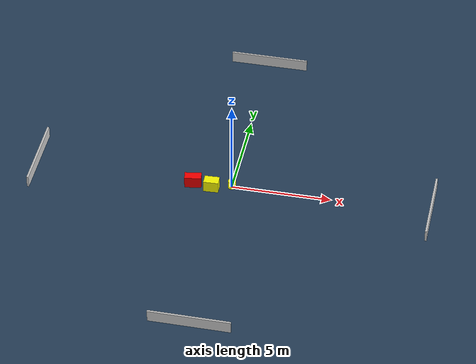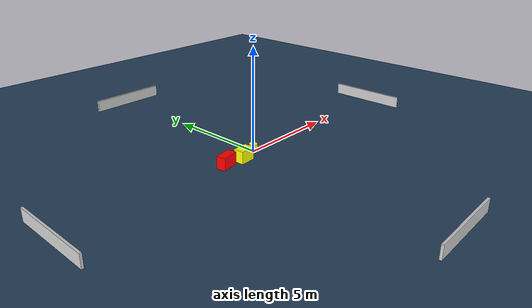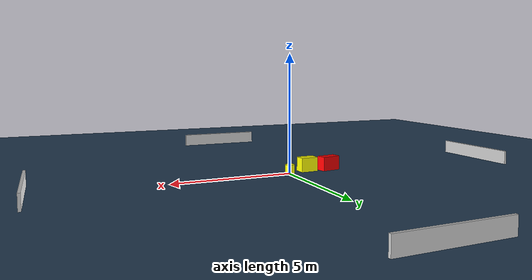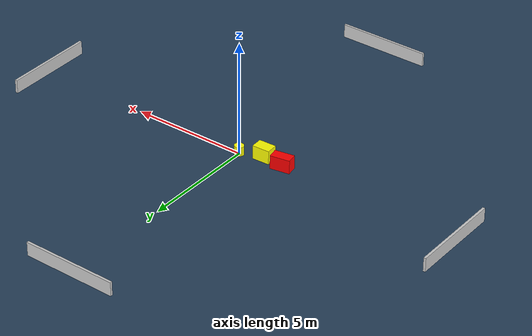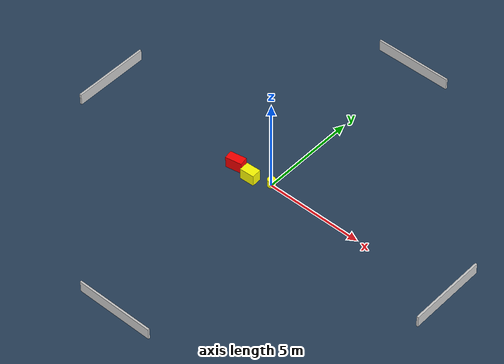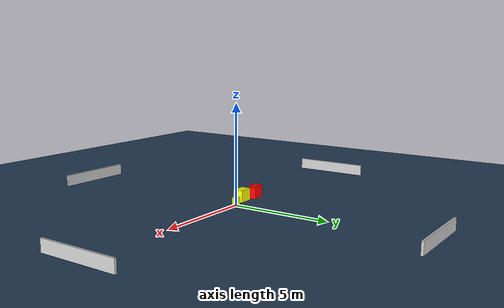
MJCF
<?xml version="1.0" ?>
<mujoco model="generated_environment">
  <option timestep="0.01" integrator="RK4" cone="elliptic"/>
  <default>
    <geom density="1"/>
  </default>
  <asset>
    <texture builtin="gradient" height="3072" name="skybox" rgb1="0.3 0.5 0.7" rgb2="0 0 0" type="skybox" width="512"/>
    <texture builtin="checker" height="300" name="groundplane" rgb1="0.2 0.3 0.4" rgb2="0.1 0.2 0.3" type="2d" width="300"/>
    <material name="groundplane" reflectance="0.2" texrepeat="5 5" texture="groundplane"/>
  </asset>
  <worldbody>
    <light dir="0 0 -1" directional="true" pos="0 0 1.5"/>
    <geom condim="3" friction="0.5 0.005 0.001" material="groundplane" name="floor" pos="0 0 0" size="0 0 0.05" type="plane"/>
    <body name="walls">
      <geom name="wall_1" condim="4" pos="-10.0 0.0 0.3" rgba="0.800000011920929 0.800000011920929 0.800000011920929 1.0" size="0.05 2.0 0.3" type="box"/>
      <geom name="wall_2" condim="4" pos="10.0 0.0 0.3" rgba="0.800000011920929 0.800000011920929 0.800000011920929 1.0" size="0.05 2.0 0.3" type="box"/>
      <geom name="wall_3" condim="4" pos="0.0 -10.0 0.3" rgba="0.800000011920929 0.800000011920929 0.800000011920929 1.0" size="2.0 0.05 0.3" type="box"/>
      <geom name="wall_4" condim="4" pos="0.0 10.0 0.3" rgba="0.800000011920929 0.800000011920929 0.800000011920929 1.0" size="2.0 0.05 0.3" type="box"/>
    </body>
    <body name="robot">
      <joint name="joint_x" type="slide" pos="0 0 0" axis="1 0 0"/>
      <joint name="joint_y" type="slide" pos="0 0 0" axis="0 1 0"/>
      <geom name="robot" type="cylinder" pos="0.0 0.0 0.2" size="0.2 0.2 0.0" mass="5.0" friction="1.0 0.005 0.0001" condim="4" rgba="1.0 1.0 0.0 1.0"/>
    </body>
    <body name="obstacle_1_movable">
      <geom name="obstacle_1_movable" condim="4" pos="-0.9775640276976874 -0.3318012371129289 0.3" euler="0 0 182.35927317283696" friction="0.0 0.005 0.001" rgba="1.0 1.0 0.0 1.0" size="0.374459305283515 0.25036935512188924 0.3" type="box" mass="0.1"/>
      <joint type="free"/>
    </body>
    <body name="obstacle_2_static">
      <geom name="obstacle_2_static" condim="4" pos="-1.9486431085031457 -0.2088748344416506 0.3" euler="0 0 9.932824585041926" friction="0.0 0.005 0.001" rgba="1.0 0.0 0.0 1.0" size="0.42189494522497123 0.223895134453023 0.3" type="box"/>
    </body>
  </worldbody>
  <actuator>
    <motor name="actuator_x" joint="joint_x" gear="1" ctrlrange="-1 1"/>
    <motor name="actuator_y" joint="joint_y" gear="1" ctrlrange="-1 1"/>
  </actuator>
</mujoco>
